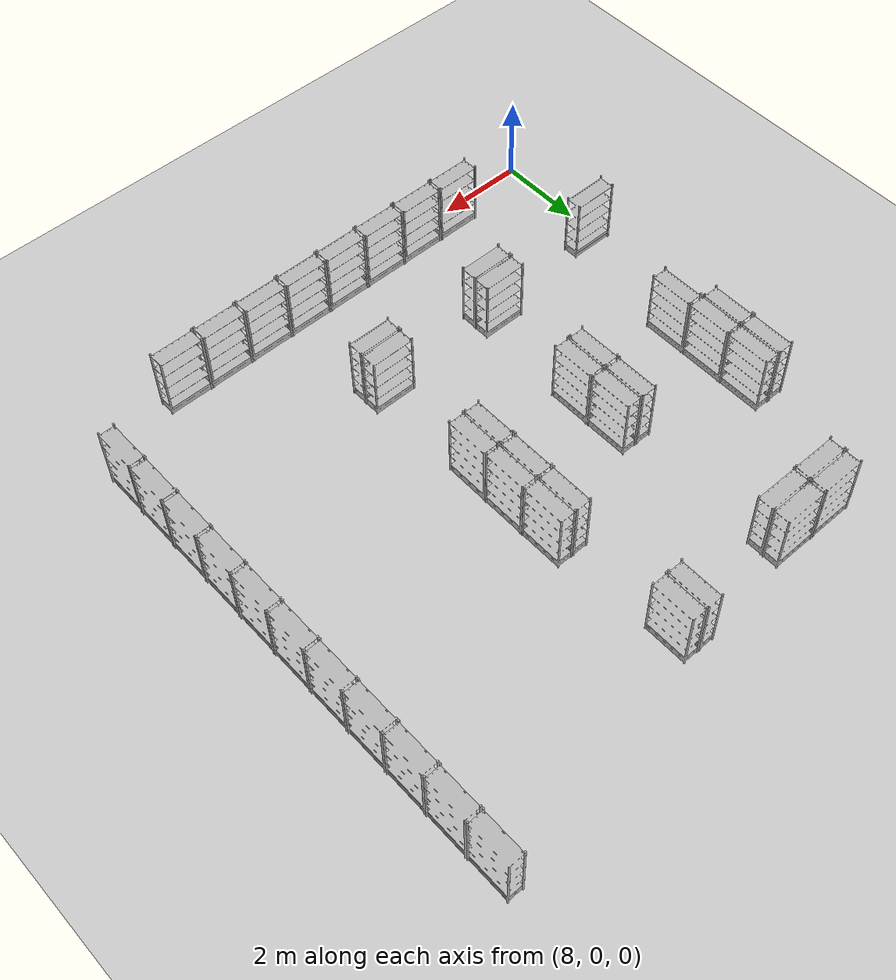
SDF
<sdf version="1.6">
 <world name="default">
  <model name="ground_plane">
   <static>1</static>
   <link name="link">
    <collision name="collision">
     <geometry><plane><normal>0 0 1</normal><size>100 100</size></plane></geometry>
     <surface>
      <contact><collide_bitmask>65535</collide_bitmask></contact>
      <friction><ode><mu>1000</mu><mu2>1000</mu2></ode></friction>
     </surface>
    </collision>
    <visual name="visual">
     <cast_shadows>0</cast_shadows>
     <geometry><plane><normal>0 0 1</normal><size>100 100</size></plane></geometry>
     <material>
      <script><uri>file://media/materials/scripts/gazebo.material</uri><name>Gazebo/Grey</name></script>
     </material>
    </visual>
   </link>
  </model>
  <model name="store_shelf_moduled_8">
   <link name="link">
    <collision name="collision">
     <geometry><mesh><uri>model://store_shelf_moduled/meshes/store_shelf_moduled.dae</uri></mesh></geometry>
    </collision>
    <visual name="visual">
     <geometry><mesh><uri>model://store_shelf_moduled/meshes/store_shelf_moduled.dae</uri></mesh></geometry>
    </visual>
    <inertial>
     <mass>1000</mass>
     <inertia>
      <ixx>840083</ixx>
      <ixy>0</ixy>
      <ixz>0</ixz>
      <iyy>475500</iyy>
      <iyz>0</iyz>
      <izz>1.30208e+06</izz>
     </inertia>
    </inertial>
   </link>
   <static>1</static>
   <pose>9.64 0.2 0 0 0 0</pose>
  </model>
  <model name="store_shelf_moduled_9">
   <link name="link">
    <collision name="collision">
     <geometry><mesh><uri>model://store_shelf_moduled/meshes/store_shelf_moduled.dae</uri></mesh></geometry>
    </collision>
    <visual name="visual">
     <geometry><mesh><uri>model://store_shelf_moduled/meshes/store_shelf_moduled.dae</uri></mesh></geometry>
    </visual>
    <inertial>
     <mass>1000</mass>
     <inertia>
      <ixx>840083</ixx>
      <ixy>0</ixy>
      <ixz>0</ixz>
      <iyy>475500</iyy>
      <iyz>0</iyz>
      <izz>1.30208e+06</izz>
     </inertia>
    </inertial>
   </link>
   <static>1</static>
   <pose>10.7 0.2 0 0 0 0</pose>
  </model>
  <model name="store_shelf_moduled_10">
   <link name="link">
    <collision name="collision">
     <geometry><mesh><uri>model://store_shelf_moduled/meshes/store_shelf_moduled.dae</uri></mesh></geometry>
    </collision>
    <visual name="visual">
     <geometry><mesh><uri>model://store_shelf_moduled/meshes/store_shelf_moduled.dae</uri></mesh></geometry>
    </visual>
    <inertial>
     <mass>1000</mass>
     <inertia>
      <ixx>840083</ixx>
      <ixy>0</ixy>
      <ixz>0</ixz>
      <iyy>475500</iyy>
      <iyz>0</iyz>
      <izz>1.30208e+06</izz>
     </inertia>
    </inertial>
   </link>
   <static>1</static>
   <pose>11.76 0.2 0 0 0 0</pose>
  </model>
  <model name="store_shelf_moduled_11">
   <link name="link">
    <collision name="collision">
     <geometry><mesh><uri>model://store_shelf_moduled/meshes/store_shelf_moduled.dae</uri></mesh></geometry>
    </collision>
    <visual name="visual">
     <geometry><mesh><uri>model://store_shelf_moduled/meshes/store_shelf_moduled.dae</uri></mesh></geometry>
    </visual>
    <inertial>
     <mass>1000</mass>
     <inertia>
      <ixx>840083</ixx>
      <ixy>0</ixy>
      <ixz>0</ixz>
      <iyy>475500</iyy>
      <iyz>0</iyz>
      <izz>1.30208e+06</izz>
     </inertia>
    </inertial>
   </link>
   <static>1</static>
   <pose>12.82 0.2 0 0 0 0</pose>
  </model>
  <model name="store_shelf_moduled_12">
   <link name="link">
    <collision name="collision">
     <geometry><mesh><uri>model://store_shelf_moduled/meshes/store_shelf_moduled.dae</uri></mesh></geometry>
    </collision>
    <visual name="visual">
     <geometry><mesh><uri>model://store_shelf_moduled/meshes/store_shelf_moduled.dae</uri></mesh></geometry>
    </visual>
    <inertial>
     <mass>1000</mass>
     <inertia>
      <ixx>840083</ixx>
      <ixy>0</ixy>
      <ixz>0</ixz>
      <iyy>475500</iyy>
      <iyz>0</iyz>
      <izz>1.30208e+06</izz>
     </inertia>
    </inertial>
   </link>
   <static>1</static>
   <pose>13.88 0.2 0 0 0 0</pose>
  </model>
  <model name="store_shelf_moduled_13">
   <link name="link">
    <collision name="collision">
     <geometry><mesh><uri>model://store_shelf_moduled/meshes/store_shelf_moduled.dae</uri></mesh></geometry>
    </collision>
    <visual name="visual">
     <geometry><mesh><uri>model://store_shelf_moduled/meshes/store_shelf_moduled.dae</uri></mesh></geometry>
    </visual>
    <inertial>
     <mass>1000</mass>
     <inertia>
      <ixx>840083</ixx>
      <ixy>0</ixy>
      <ixz>0</ixz>
      <iyy>475500</iyy>
      <iyz>0</iyz>
      <izz>1.30208e+06</izz>
     </inertia>
    </inertial>
   </link>
   <static>1</static>
   <pose>14.94 0.2 0 0 0 0</pose>
  </model>
  <model name="store_shelf_moduled_14">
   <link name="link">
    <collision name="collision">
     <geometry><mesh><uri>model://store_shelf_moduled/meshes/store_shelf_moduled.dae</uri></mesh></geometry>
    </collision>
    <visual name="visual">
     <geometry><mesh><uri>model://store_shelf_moduled/meshes/store_shelf_moduled.dae</uri></mesh></geometry>
    </visual>
    <inertial>
     <mass>1000</mass>
     <inertia>
      <ixx>840083</ixx>
      <ixy>0</ixy>
      <ixz>0</ixz>
      <iyy>475500</iyy>
      <iyz>0</iyz>
      <izz>1.30208e+06</izz>
     </inertia>
    </inertial>
   </link>
   <static>1</static>
   <pose>16 0.2 0 0 0 0</pose>
  </model>
  <model name="store_shelf_moduled_15">
   <link name="link">
    <collision name="collision">
     <geometry><mesh><uri>model://store_shelf_moduled/meshes/store_shelf_moduled.dae</uri></mesh></geometry>
    </collision>
    <visual name="visual">
     <geometry><mesh><uri>model://store_shelf_moduled/meshes/store_shelf_moduled.dae</uri></mesh></geometry>
    </visual>
    <inertial>
     <mass>1000</mass>
     <inertia>
      <ixx>840083</ixx>
      <ixy>0</ixy>
      <ixz>0</ixz>
      <iyy>475500</iyy>
      <iyz>0</iyz>
      <izz>1.30208e+06</izz>
     </inertia>
    </inertial>
   </link>
   <static>1</static>
   <pose>17.06 0.2 0 0 0 0</pose>
  </model>
  <model name="store_shelf_moduled_16">
   <link name="link">
    <collision name="collision">
     <geometry><mesh><uri>model://store_shelf_moduled/meshes/store_shelf_moduled.dae</uri></mesh></geometry>
    </collision>
    <visual name="visual">
     <geometry><mesh><uri>model://store_shelf_moduled/meshes/store_shelf_moduled.dae</uri></mesh></geometry>
    </visual>
    <inertial>
     <mass>1000</mass>
     <inertia>
      <ixx>840083</ixx>
      <ixy>0</ixy>
      <ixz>0</ixz>
      <iyy>475500</iyy>
      <iyz>0</iyz>
      <izz>1.30208e+06</izz>
     </inertia>
    </inertial>
   </link>
   <static>1</static>
   <pose>20 1.16 0 0 0 1.570796</pose>
  </model>
  <model name="store_shelf_moduled_17">
   <link name="link">
    <collision name="collision">
     <geometry><mesh><uri>model://store_shelf_moduled/meshes/store_shelf_moduled.dae</uri></mesh></geometry>
    </collision>
    <visual name="visual">
     <geometry><mesh><uri>model://store_shelf_moduled/meshes/store_shelf_moduled.dae</uri></mesh></geometry>
    </visual>
    <inertial>
     <mass>1000</mass>
     <inertia>
      <ixx>840083</ixx>
      <ixy>0</ixy>
      <ixz>0</ixz>
      <iyy>475500</iyy>
      <iyz>0</iyz>
      <izz>1.30208e+06</izz>
     </inertia>
    </inertial>
   </link>
   <static>1</static>
   <pose>20 2.22 0 0 0 1.570796</pose>
  </model>
  <model name="store_shelf_moduled_18">
   <link name="link">
    <collision name="collision">
     <geometry><mesh><uri>model://store_shelf_moduled/meshes/store_shelf_moduled.dae</uri></mesh></geometry>
    </collision>
    <visual name="visual">
     <geometry><mesh><uri>model://store_shelf_moduled/meshes/store_shelf_moduled.dae</uri></mesh></geometry>
    </visual>
    <inertial>
     <mass>1000</mass>
     <inertia>
      <ixx>840083</ixx>
      <ixy>0</ixy>
      <ixz>0</ixz>
      <iyy>475500</iyy>
      <iyz>0</iyz>
      <izz>1.30208e+06</izz>
     </inertia>
    </inertial>
   </link>
   <static>1</static>
   <pose>20 3.28 0 0 0 1.570796</pose>
  </model>
  <model name="store_shelf_moduled_19">
   <link name="link">
    <collision name="collision">
     <geometry><mesh><uri>model://store_shelf_moduled/meshes/store_shelf_moduled.dae</uri></mesh></geometry>
    </collision>
    <visual name="visual">
     <geometry><mesh><uri>model://store_shelf_moduled/meshes/store_shelf_moduled.dae</uri></mesh></geometry>
    </visual>
    <inertial>
     <mass>1000</mass>
     <inertia>
      <ixx>840083</ixx>
      <ixy>0</ixy>
      <ixz>0</ixz>
      <iyy>475500</iyy>
      <iyz>0</iyz>
      <izz>1.30208e+06</izz>
     </inertia>
    </inertial>
   </link>
   <static>1</static>
   <pose>20 4.34 0 0 0 1.570796</pose>
  </model>
  <model name="store_shelf_moduled_20">
   <link name="link">
    <collision name="collision">
     <geometry><mesh><uri>model://store_shelf_moduled/meshes/store_shelf_moduled.dae</uri></mesh></geometry>
    </collision>
    <visual name="visual">
     <geometry><mesh><uri>model://store_shelf_moduled/meshes/store_shelf_moduled.dae</uri></mesh></geometry>
    </visual>
    <inertial>
     <mass>1000</mass>
     <inertia>
      <ixx>840083</ixx>
      <ixy>0</ixy>
      <ixz>0</ixz>
      <iyy>475500</iyy>
      <iyz>0</iyz>
      <izz>1.30208e+06</izz>
     </inertia>
    </inertial>
   </link>
   <static>1</static>
   <pose>20 5.4 0 0 0 1.570796</pose>
  </model>
  <model name="store_shelf_moduled_21">
   <link name="link">
    <collision name="collision">
     <geometry><mesh><uri>model://store_shelf_moduled/meshes/store_shelf_moduled.dae</uri></mesh></geometry>
    </collision>
    <visual name="visual">
     <geometry><mesh><uri>model://store_shelf_moduled/meshes/store_shelf_moduled.dae</uri></mesh></geometry>
    </visual>
    <inertial>
     <mass>1000</mass>
     <inertia>
      <ixx>840083</ixx>
      <ixy>0</ixy>
      <ixz>0</ixz>
      <iyy>475500</iyy>
      <iyz>0</iyz>
      <izz>1.30208e+06</izz>
     </inertia>
    </inertial>
   </link>
   <static>1</static>
   <pose>20 6.46 0 0 0 1.570796</pose>
  </model>
  <model name="store_shelf_moduled_22">
   <link name="link">
    <collision name="collision">
     <geometry><mesh><uri>model://store_shelf_moduled/meshes/store_shelf_moduled.dae</uri></mesh></geometry>
    </collision>
    <visual name="visual">
     <geometry><mesh><uri>model://store_shelf_moduled/meshes/store_shelf_moduled.dae</uri></mesh></geometry>
    </visual>
    <inertial>
     <mass>1000</mass>
     <inertia>
      <ixx>840083</ixx>
      <ixy>0</ixy>
      <ixz>0</ixz>
      <iyy>475500</iyy>
      <iyz>0</iyz>
      <izz>1.30208e+06</izz>
     </inertia>
    </inertial>
   </link>
   <static>1</static>
   <pose>20 7.52 0 0 0 1.570796</pose>
  </model>
  <model name="store_shelf_moduled_23">
   <link name="link">
    <collision name="collision">
     <geometry><mesh><uri>model://store_shelf_moduled/meshes/store_shelf_moduled.dae</uri></mesh></geometry>
    </collision>
    <visual name="visual">
     <geometry><mesh><uri>model://store_shelf_moduled/meshes/store_shelf_moduled.dae</uri></mesh></geometry>
    </visual>
    <inertial>
     <mass>1000</mass>
     <inertia>
      <ixx>840083</ixx>
      <ixy>0</ixy>
      <ixz>0</ixz>
      <iyy>475500</iyy>
      <iyz>0</iyz>
      <izz>1.30208e+06</izz>
     </inertia>
    </inertial>
   </link>
   <static>1</static>
   <pose>20 8.58 0 0 0 1.570796</pose>
  </model>
  <model name="store_shelf_moduled_24">
   <link name="link">
    <collision name="collision">
     <geometry><mesh><uri>model://store_shelf_moduled/meshes/store_shelf_moduled.dae</uri></mesh></geometry>
    </collision>
    <visual name="visual">
     <geometry><mesh><uri>model://store_shelf_moduled/meshes/store_shelf_moduled.dae</uri></mesh></geometry>
    </visual>
    <inertial>
     <mass>1000</mass>
     <inertia>
      <ixx>840083</ixx>
      <ixy>0</ixy>
      <ixz>0</ixz>
      <iyy>475500</iyy>
      <iyz>0</iyz>
      <izz>1.30208e+06</izz>
     </inertia>
    </inertial>
   </link>
   <static>1</static>
   <pose>20 9.64 0 0 0 1.570796</pose>
  </model>
  <model name="store_shelf_moduled_25">
   <link name="link">
    <collision name="collision">
     <geometry><mesh><uri>model://store_shelf_moduled/meshes/store_shelf_moduled.dae</uri></mesh></geometry>
    </collision>
    <visual name="visual">
     <geometry><mesh><uri>model://store_shelf_moduled/meshes/store_shelf_moduled.dae</uri></mesh></geometry>
    </visual>
    <inertial>
     <mass>1000</mass>
     <inertia>
      <ixx>840083</ixx>
      <ixy>0</ixy>
      <ixz>0</ixz>
      <iyy>475500</iyy>
      <iyz>0</iyz>
      <izz>1.30208e+06</izz>
     </inertia>
    </inertial>
   </link>
   <static>1</static>
   <pose>20 10.7 0 0 0 1.570796</pose>
  </model>
  <model name="store_shelf_moduled_26">
   <link name="link">
    <collision name="collision">
     <geometry><mesh><uri>model://store_shelf_moduled/meshes/store_shelf_moduled.dae</uri></mesh></geometry>
    </collision>
    <visual name="visual">
     <geometry><mesh><uri>model://store_shelf_moduled/meshes/store_shelf_moduled.dae</uri></mesh></geometry>
    </visual>
    <inertial>
     <mass>1000</mass>
     <inertia>
      <ixx>840083</ixx>
      <ixy>0</ixy>
      <ixz>0</ixz>
      <iyy>475500</iyy>
      <iyz>0</iyz>
      <izz>1.30208e+06</izz>
     </inertia>
    </inertial>
   </link>
   <static>1</static>
   <pose>20 11.76 0 0 0 1.570796</pose>
  </model>
  <model name="store_shelf_moduled_43">
   <link name="link">
    <collision name="collision">
     <geometry><mesh><uri>model://store_shelf_moduled/meshes/store_shelf_moduled.dae</uri></mesh></geometry>
    </collision>
    <visual name="visual">
     <geometry><mesh><uri>model://store_shelf_moduled/meshes/store_shelf_moduled.dae</uri></mesh></geometry>
    </visual>
    <inertial>
     <mass>1000</mass>
     <inertia>
      <ixx>840083</ixx>
      <ixy>0</ixy>
      <ixz>0</ixz>
      <iyy>475500</iyy>
      <iyz>0</iyz>
      <izz>1.30208e+06</izz>
     </inertia>
    </inertial>
   </link>
   <static>1</static>
   <pose>8.86 3.04 0 0 0 -3.141593</pose>
  </model>
  <model name="store_shelf_moduled_52">
   <link name="link">
    <collision name="collision">
     <geometry><mesh><uri>model://store_shelf_moduled/meshes/store_shelf_moduled.dae</uri></mesh></geometry>
    </collision>
    <visual name="visual">
     <geometry><mesh><uri>model://store_shelf_moduled/meshes/store_shelf_moduled.dae</uri></mesh></geometry>
    </visual>
    <inertial>
     <mass>1000</mass>
     <inertia>
      <ixx>840083</ixx>
      <ixy>0</ixy>
      <ixz>0</ixz>
      <iyy>475500</iyy>
      <iyz>0</iyz>
      <izz>1.30208e+06</izz>
     </inertia>
    </inertial>
   </link>
   <static>1</static>
   <pose>13.92 3.04 0 0 0 0</pose>
  </model>
  <model name="store_shelf_moduled_53">
   <link name="link">
    <collision name="collision">
     <geometry><mesh><uri>model://store_shelf_moduled/meshes/store_shelf_moduled.dae</uri></mesh></geometry>
    </collision>
    <visual name="visual">
     <geometry><mesh><uri>model://store_shelf_moduled/meshes/store_shelf_moduled.dae</uri></mesh></geometry>
    </visual>
    <inertial>
     <mass>1000</mass>
     <inertia>
      <ixx>840083</ixx>
      <ixy>0</ixy>
      <ixz>0</ixz>
      <iyy>475500</iyy>
      <iyz>0</iyz>
      <izz>1.30208e+06</izz>
     </inertia>
    </inertial>
   </link>
   <static>1</static>
   <pose>14.98 3.04 0 0 0 -3.141593</pose>
  </model>
  <model name="store_shelf_moduled_54">
   <link name="link">
    <collision name="collision">
     <geometry><mesh><uri>model://store_shelf_moduled/meshes/store_shelf_moduled.dae</uri></mesh></geometry>
    </collision>
    <visual name="visual">
     <geometry><mesh><uri>model://store_shelf_moduled/meshes/store_shelf_moduled.dae</uri></mesh></geometry>
    </visual>
    <inertial>
     <mass>1000</mass>
     <inertia>
      <ixx>840083</ixx>
      <ixy>0</ixy>
      <ixz>0</ixz>
      <iyy>475500</iyy>
      <iyz>0</iyz>
      <izz>1.30208e+06</izz>
     </inertia>
    </inertial>
   </link>
   <static>1</static>
   <pose>14.12 10.64 0 0 0 1.570796</pose>
  </model>
  <model name="store_shelf_moduled_55">
   <link name="link">
    <collision name="collision">
     <geometry><mesh><uri>model://store_shelf_moduled/meshes/store_shelf_moduled.dae</uri></mesh></geometry>
    </collision>
    <visual name="visual">
     <geometry><mesh><uri>model://store_shelf_moduled/meshes/store_shelf_moduled.dae</uri></mesh></geometry>
    </visual>
    <inertial>
     <mass>1000</mass>
     <inertia>
      <ixx>840083</ixx>
      <ixy>0</ixy>
      <ixz>0</ixz>
      <iyy>475500</iyy>
      <iyz>0</iyz>
      <izz>1.30208e+06</izz>
     </inertia>
    </inertial>
   </link>
   <static>1</static>
   <pose>14.12 11.7 0 0 0 -1.570796</pose>
  </model>
  <model name="store_shelf_moduled_56">
   <link name="link">
    <collision name="collision">
     <geometry><mesh><uri>model://store_shelf_moduled/meshes/store_shelf_moduled.dae</uri></mesh></geometry>
    </collision>
    <visual name="visual">
     <geometry><mesh><uri>model://store_shelf_moduled/meshes/store_shelf_moduled.dae</uri></mesh></geometry>
    </visual>
    <inertial>
     <mass>1000</mass>
     <inertia>
      <ixx>840083</ixx>
      <ixy>0</ixy>
      <ixz>0</ixz>
      <iyy>475500</iyy>
      <iyz>0</iyz>
      <izz>1.30208e+06</izz>
     </inertia>
    </inertial>
   </link>
   <static>1</static>
   <pose>11.56 5.46 0 0 0 1.570796</pose>
  </model>
  <model name="store_shelf_moduled_57">
   <link name="link">
    <collision name="collision">
     <geometry><mesh><uri>model://store_shelf_moduled/meshes/store_shelf_moduled.dae</uri></mesh></geometry>
    </collision>
    <visual name="visual">
     <geometry><mesh><uri>model://store_shelf_moduled/meshes/store_shelf_moduled.dae</uri></mesh></geometry>
    </visual>
    <inertial>
     <mass>1000</mass>
     <inertia>
      <ixx>840083</ixx>
      <ixy>0</ixy>
      <ixz>0</ixz>
      <iyy>475500</iyy>
      <iyz>0</iyz>
      <izz>1.30208e+06</izz>
     </inertia>
    </inertial>
   </link>
   <static>1</static>
   <pose>11.56 6.52 0 0 0 -1.570796</pose>
  </model>
  <model name="store_shelf_moduled_58">
   <link name="link">
    <collision name="collision">
     <geometry><mesh><uri>model://store_shelf_moduled/meshes/store_shelf_moduled.dae</uri></mesh></geometry>
    </collision>
    <visual name="visual">
     <geometry><mesh><uri>model://store_shelf_moduled/meshes/store_shelf_moduled.dae</uri></mesh></geometry>
    </visual>
    <inertial>
     <mass>1000</mass>
     <inertia>
      <ixx>840083</ixx>
      <ixy>0</ixy>
      <ixz>0</ixz>
      <iyy>475500</iyy>
      <iyz>0</iyz>
      <izz>1.30208e+06</izz>
     </inertia>
    </inertial>
   </link>
   <static>1</static>
   <pose>11.56 6.52 0 0 0 1.570796</pose>
  </model>
  <model name="store_shelf_moduled_59">
   <link name="link">
    <collision name="collision">
     <geometry><mesh><uri>model://store_shelf_moduled/meshes/store_shelf_moduled.dae</uri></mesh></geometry>
    </collision>
    <visual name="visual">
     <geometry><mesh><uri>model://store_shelf_moduled/meshes/store_shelf_moduled.dae</uri></mesh></geometry>
    </visual>
    <inertial>
     <mass>1000</mass>
     <inertia>
      <ixx>840083</ixx>
      <ixy>0</ixy>
      <ixz>0</ixz>
      <iyy>475500</iyy>
      <iyz>0</iyz>
      <izz>1.30208e+06</izz>
     </inertia>
    </inertial>
   </link>
   <static>1</static>
   <pose>11.56 7.58 0 0 0 -1.570796</pose>
  </model>
  <model name="store_shelf_moduled_60">
   <link name="link">
    <collision name="collision">
     <geometry><mesh><uri>model://store_shelf_moduled/meshes/store_shelf_moduled.dae</uri></mesh></geometry>
    </collision>
    <visual name="visual">
     <geometry><mesh><uri>model://store_shelf_moduled/meshes/store_shelf_moduled.dae</uri></mesh></geometry>
    </visual>
    <inertial>
     <mass>1000</mass>
     <inertia>
      <ixx>840083</ixx>
      <ixy>0</ixy>
      <ixz>0</ixz>
      <iyy>475500</iyy>
      <iyz>0</iyz>
      <izz>1.30208e+06</izz>
     </inertia>
    </inertial>
   </link>
   <static>1</static>
   <pose>14.4 5.46 0 0 0 1.570796</pose>
  </model>
  <model name="store_shelf_moduled_61">
   <link name="link">
    <collision name="collision">
     <geometry><mesh><uri>model://store_shelf_moduled/meshes/store_shelf_moduled.dae</uri></mesh></geometry>
    </collision>
    <visual name="visual">
     <geometry><mesh><uri>model://store_shelf_moduled/meshes/store_shelf_moduled.dae</uri></mesh></geometry>
    </visual>
    <inertial>
     <mass>1000</mass>
     <inertia>
      <ixx>840083</ixx>
      <ixy>0</ixy>
      <ixz>0</ixz>
      <iyy>475500</iyy>
      <iyz>0</iyz>
      <izz>1.30208e+06</izz>
     </inertia>
    </inertial>
   </link>
   <static>1</static>
   <pose>14.4 6.52 0 0 0 -1.570796</pose>
  </model>
  <model name="store_shelf_moduled_62">
   <link name="link">
    <collision name="collision">
     <geometry><mesh><uri>model://store_shelf_moduled/meshes/store_shelf_moduled.dae</uri></mesh></geometry>
    </collision>
    <visual name="visual">
     <geometry><mesh><uri>model://store_shelf_moduled/meshes/store_shelf_moduled.dae</uri></mesh></geometry>
    </visual>
    <inertial>
     <mass>1000</mass>
     <inertia>
      <ixx>840083</ixx>
      <ixy>0</ixy>
      <ixz>0</ixz>
      <iyy>475500</iyy>
      <iyz>0</iyz>
      <izz>1.30208e+06</izz>
     </inertia>
    </inertial>
   </link>
   <static>1</static>
   <pose>14.4 6.52 0 0 0 1.570796</pose>
  </model>
  <model name="store_shelf_moduled_63">
   <link name="link">
    <collision name="collision">
     <geometry><mesh><uri>model://store_shelf_moduled/meshes/store_shelf_moduled.dae</uri></mesh></geometry>
    </collision>
    <visual name="visual">
     <geometry><mesh><uri>model://store_shelf_moduled/meshes/store_shelf_moduled.dae</uri></mesh></geometry>
    </visual>
    <inertial>
     <mass>1000</mass>
     <inertia>
      <ixx>840083</ixx>
      <ixy>0</ixy>
      <ixz>0</ixz>
      <iyy>475500</iyy>
      <iyz>0</iyz>
      <izz>1.30208e+06</izz>
     </inertia>
    </inertial>
   </link>
   <static>1</static>
   <pose>14.4 7.58 0 0 0 -1.570796</pose>
  </model>
  <model name="store_shelf_moduled_64">
   <link name="link">
    <collision name="collision">
     <geometry><mesh><uri>model://store_shelf_moduled/meshes/store_shelf_moduled.dae</uri></mesh></geometry>
    </collision>
    <visual name="visual">
     <geometry><mesh><uri>model://store_shelf_moduled/meshes/store_shelf_moduled.dae</uri></mesh></geometry>
    </visual>
    <inertial>
     <mass>1000</mass>
     <inertia>
      <ixx>840083</ixx>
      <ixy>0</ixy>
      <ixz>0</ixz>
      <iyy>475500</iyy>
      <iyz>0</iyz>
      <izz>1.30208e+06</izz>
     </inertia>
    </inertial>
   </link>
   <static>1</static>
   <pose>14.4 7.58 0 0 0 1.570796</pose>
  </model>
  <model name="store_shelf_moduled_65">
   <link name="link">
    <collision name="collision">
     <geometry><mesh><uri>model://store_shelf_moduled/meshes/store_shelf_moduled.dae</uri></mesh></geometry>
    </collision>
    <visual name="visual">
     <geometry><mesh><uri>model://store_shelf_moduled/meshes/store_shelf_moduled.dae</uri></mesh></geometry>
    </visual>
    <inertial>
     <mass>1000</mass>
     <inertia>
      <ixx>840083</ixx>
      <ixy>0</ixy>
      <ixz>0</ixz>
      <iyy>475500</iyy>
      <iyz>0</iyz>
      <izz>1.30208e+06</izz>
     </inertia>
    </inertial>
   </link>
   <static>1</static>
   <pose>14.4 8.64 0 0 0 -1.570796</pose>
  </model>
  <model name="store_shelf_moduled_70">
   <link name="link">
    <collision name="collision">
     <geometry><mesh><uri>model://store_shelf_moduled/meshes/store_shelf_moduled.dae</uri></mesh></geometry>
    </collision>
    <visual name="visual">
     <geometry><mesh><uri>model://store_shelf_moduled/meshes/store_shelf_moduled.dae</uri></mesh></geometry>
    </visual>
    <inertial>
     <mass>1000</mass>
     <inertia>
      <ixx>840083</ixx>
      <ixy>0</ixy>
      <ixz>0</ixz>
      <iyy>475500</iyy>
      <iyz>0</iyz>
      <izz>1.30208e+06</izz>
     </inertia>
    </inertial>
   </link>
   <static>1</static>
   <pose>9.58 11.06 0 0 0 0</pose>
  </model>
  <model name="store_shelf_moduled_71">
   <link name="link">
    <collision name="collision">
     <geometry><mesh><uri>model://store_shelf_moduled/meshes/store_shelf_moduled.dae</uri></mesh></geometry>
    </collision>
    <visual name="visual">
     <geometry><mesh><uri>model://store_shelf_moduled/meshes/store_shelf_moduled.dae</uri></mesh></geometry>
    </visual>
    <inertial>
     <mass>1000</mass>
     <inertia>
      <ixx>840083</ixx>
      <ixy>0</ixy>
      <ixz>0</ixz>
      <iyy>475500</iyy>
      <iyz>0</iyz>
      <izz>1.30208e+06</izz>
     </inertia>
    </inertial>
   </link>
   <static>1</static>
   <pose>10.64 11.06 0 0 0 -3.141593</pose>
  </model>
  <model name="store_shelf_moduled_72">
   <link name="link">
    <collision name="collision">
     <geometry><mesh><uri>model://store_shelf_moduled/meshes/store_shelf_moduled.dae</uri></mesh></geometry>
    </collision>
    <visual name="visual">
     <geometry><mesh><uri>model://store_shelf_moduled/meshes/store_shelf_moduled.dae</uri></mesh></geometry>
    </visual>
    <inertial>
     <mass>1000</mass>
     <inertia>
      <ixx>840083</ixx>
      <ixy>0</ixy>
      <ixz>0</ixz>
      <iyy>475500</iyy>
      <iyz>0</iyz>
      <izz>1.30208e+06</izz>
     </inertia>
    </inertial>
   </link>
   <static>1</static>
   <pose>10.64 11.06 0 0 0 0</pose>
  </model>
  <model name="store_shelf_moduled_73">
   <link name="link">
    <collision name="collision">
     <geometry><mesh><uri>model://store_shelf_moduled/meshes/store_shelf_moduled.dae</uri></mesh></geometry>
    </collision>
    <visual name="visual">
     <geometry><mesh><uri>model://store_shelf_moduled/meshes/store_shelf_moduled.dae</uri></mesh></geometry>
    </visual>
    <inertial>
     <mass>1000</mass>
     <inertia>
      <ixx>840083</ixx>
      <ixy>0</ixy>
      <ixz>0</ixz>
      <iyy>475500</iyy>
      <iyz>0</iyz>
      <izz>1.30208e+06</izz>
     </inertia>
    </inertial>
   </link>
   <static>1</static>
   <pose>11.7 11.06 0 0 0 -3.141593</pose>
  </model>
  <model name="store_shelf_moduled_75">
   <link name="link">
    <collision name="collision">
     <geometry><mesh><uri>model://store_shelf_moduled/meshes/store_shelf_moduled.dae</uri></mesh></geometry>
    </collision>
    <visual name="visual">
     <geometry><mesh><uri>model://store_shelf_moduled/meshes/store_shelf_moduled.dae</uri></mesh></geometry>
    </visual>
    <inertial>
     <mass>1000</mass>
     <inertia>
      <ixx>840083</ixx>
      <ixy>0</ixy>
      <ixz>0</ixz>
      <iyy>475500</iyy>
      <iyz>0</iyz>
      <izz>1.30208e+06</izz>
     </inertia>
    </inertial>
   </link>
   <static>1</static>
   <pose>8.72 6.52 0 0 0 -1.570796</pose>
  </model>
  <model name="store_shelf_moduled_76">
   <link name="link">
    <collision name="collision">
     <geometry><mesh><uri>model://store_shelf_moduled/meshes/store_shelf_moduled.dae</uri></mesh></geometry>
    </collision>
    <visual name="visual">
     <geometry><mesh><uri>model://store_shelf_moduled/meshes/store_shelf_moduled.dae</uri></mesh></geometry>
    </visual>
    <inertial>
     <mass>1000</mass>
     <inertia>
      <ixx>840083</ixx>
      <ixy>0</ixy>
      <ixz>0</ixz>
      <iyy>475500</iyy>
      <iyz>0</iyz>
      <izz>1.30208e+06</izz>
     </inertia>
    </inertial>
   </link>
   <static>1</static>
   <pose>8.72 6.52 0 0 0 1.570796</pose>
  </model>
  <model name="store_shelf_moduled_77">
   <link name="link">
    <collision name="collision">
     <geometry><mesh><uri>model://store_shelf_moduled/meshes/store_shelf_moduled.dae</uri></mesh></geometry>
    </collision>
    <visual name="visual">
     <geometry><mesh><uri>model://store_shelf_moduled/meshes/store_shelf_moduled.dae</uri></mesh></geometry>
    </visual>
    <inertial>
     <mass>1000</mass>
     <inertia>
      <ixx>840083</ixx>
      <ixy>0</ixy>
      <ixz>0</ixz>
      <iyy>475500</iyy>
      <iyz>0</iyz>
      <izz>1.30208e+06</izz>
     </inertia>
    </inertial>
   </link>
   <static>1</static>
   <pose>8.72 7.58 0 0 0 -1.570796</pose>
  </model>
  <model name="store_shelf_moduled_78">
   <link name="link">
    <collision name="collision">
     <geometry><mesh><uri>model://store_shelf_moduled/meshes/store_shelf_moduled.dae</uri></mesh></geometry>
    </collision>
    <visual name="visual">
     <geometry><mesh><uri>model://store_shelf_moduled/meshes/store_shelf_moduled.dae</uri></mesh></geometry>
    </visual>
    <inertial>
     <mass>1000</mass>
     <inertia>
      <ixx>840083</ixx>
      <ixy>0</ixy>
      <ixz>0</ixz>
      <iyy>475500</iyy>
      <iyz>0</iyz>
      <izz>1.30208e+06</izz>
     </inertia>
    </inertial>
   </link>
   <static>1</static>
   <pose>8.72 7.58 0 0 0 1.570796</pose>
  </model>
  <model name="store_shelf_moduled_79">
   <link name="link">
    <collision name="collision">
     <geometry><mesh><uri>model://store_shelf_moduled/meshes/store_shelf_moduled.dae</uri></mesh></geometry>
    </collision>
    <visual name="visual">
     <geometry><mesh><uri>model://store_shelf_moduled/meshes/store_shelf_moduled.dae</uri></mesh></geometry>
    </visual>
    <inertial>
     <mass>1000</mass>
     <inertia>
      <ixx>840083</ixx>
      <ixy>0</ixy>
      <ixz>0</ixz>
      <iyy>475500</iyy>
      <iyz>0</iyz>
      <izz>1.30208e+06</izz>
     </inertia>
    </inertial>
   </link>
   <static>1</static>
   <pose>8.72 8.64 0 0 0 -1.570796</pose>
  </model>
  <model name="store_shelf_moduled_82">
   <link name="link">
    <collision name="collision">
     <geometry><mesh><uri>model://store_shelf_moduled/meshes/store_shelf_moduled.dae</uri></mesh></geometry>
    </collision>
    <visual name="visual">
     <geometry><mesh><uri>model://store_shelf_moduled/meshes/store_shelf_moduled.dae</uri></mesh></geometry>
    </visual>
    <inertial>
     <mass>1000</mass>
     <inertia>
      <ixx>840083</ixx>
      <ixy>0</ixy>
      <ixz>0</ixz>
      <iyy>475500</iyy>
      <iyz>0</iyz>
      <izz>1.30208e+06</izz>
     </inertia>
    </inertial>
   </link>
   <static>1</static>
   <pose>10.86 3.04 0 0 0 0</pose>
  </model>
  <model name="store_shelf_moduled_83">
   <link name="link">
    <collision name="collision">
     <geometry><mesh><uri>model://store_shelf_moduled/meshes/store_shelf_moduled.dae</uri></mesh></geometry>
    </collision>
    <visual name="visual">
     <geometry><mesh><uri>model://store_shelf_moduled/meshes/store_shelf_moduled.dae</uri></mesh></geometry>
    </visual>
    <inertial>
     <mass>1000</mass>
     <inertia>
      <ixx>840083</ixx>
      <ixy>0</ixy>
      <ixz>0</ixz>
      <iyy>475500</iyy>
      <iyz>0</iyz>
      <izz>1.30208e+06</izz>
     </inertia>
    </inertial>
   </link>
   <static>1</static>
   <pose>11.92 3.04 0 0 0 -3.141593</pose>
  </model>
 </world>
</sdf>
